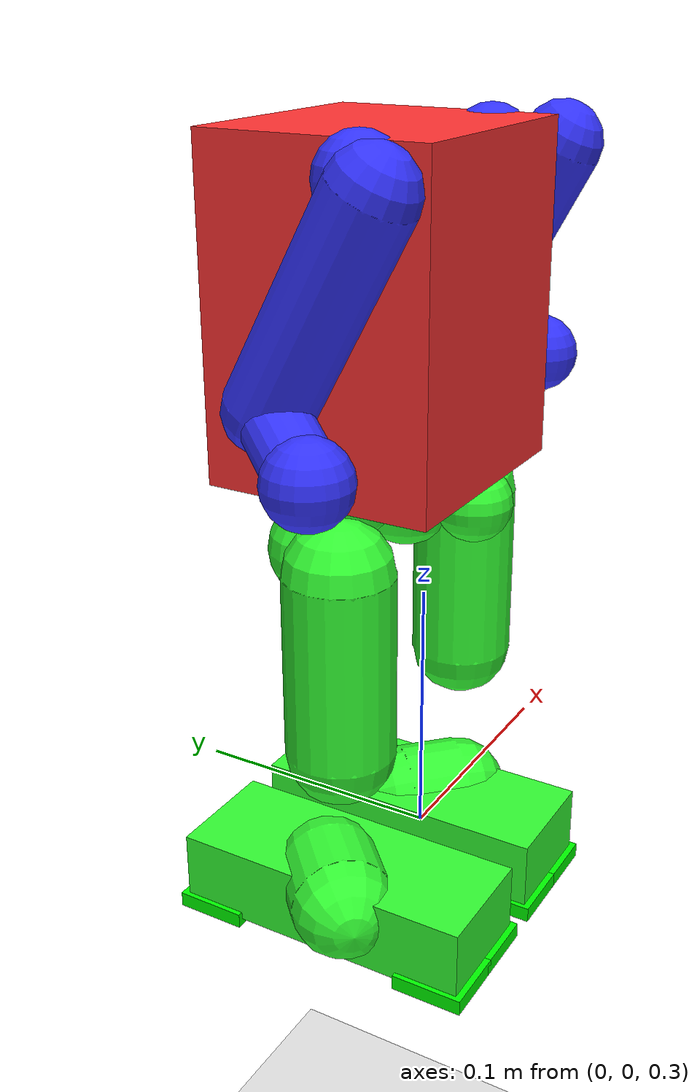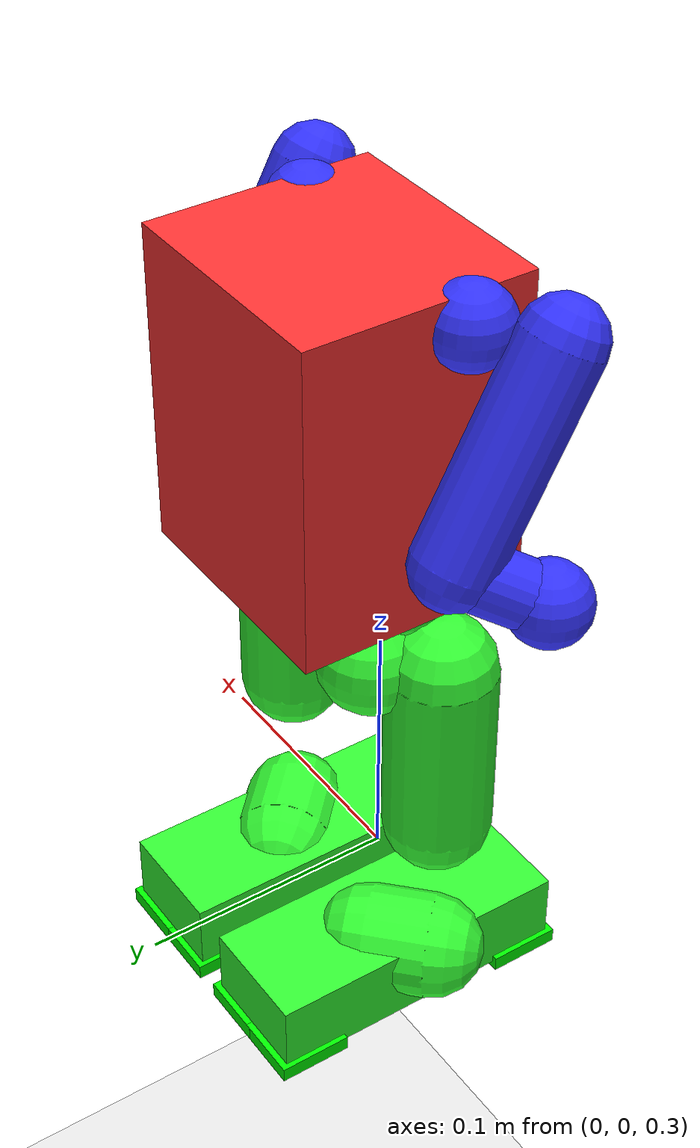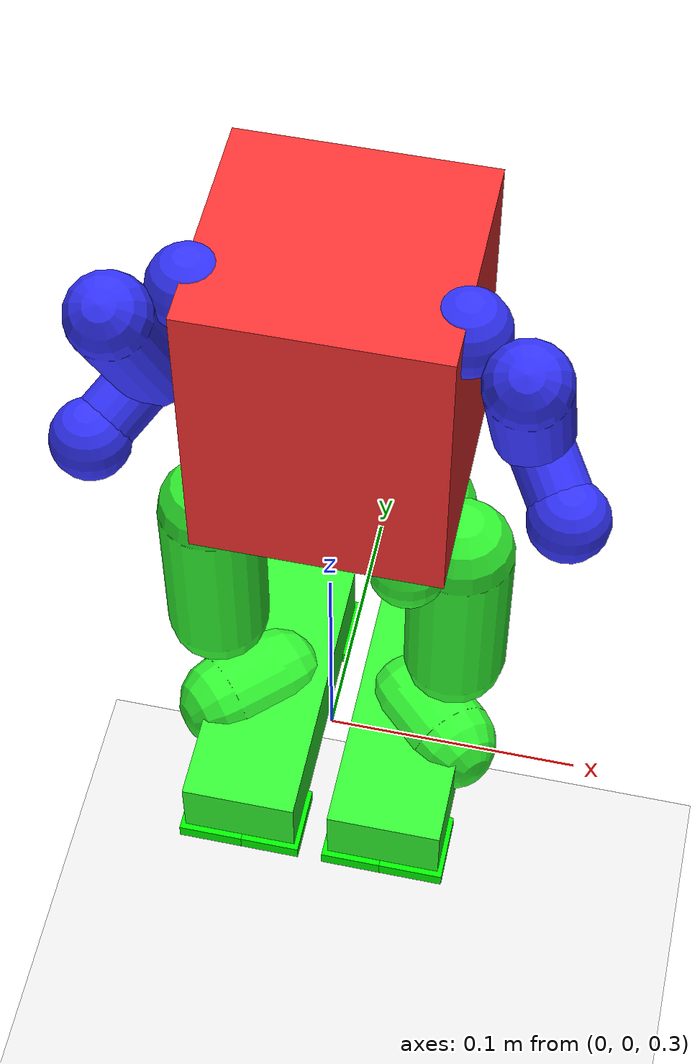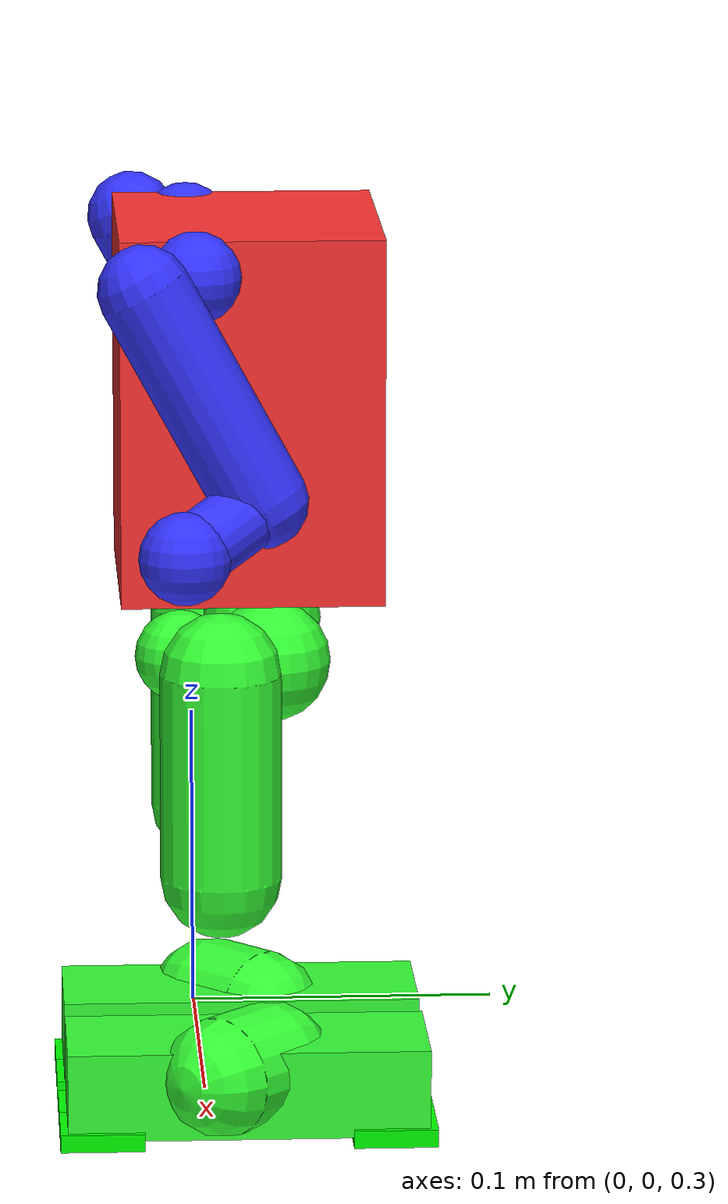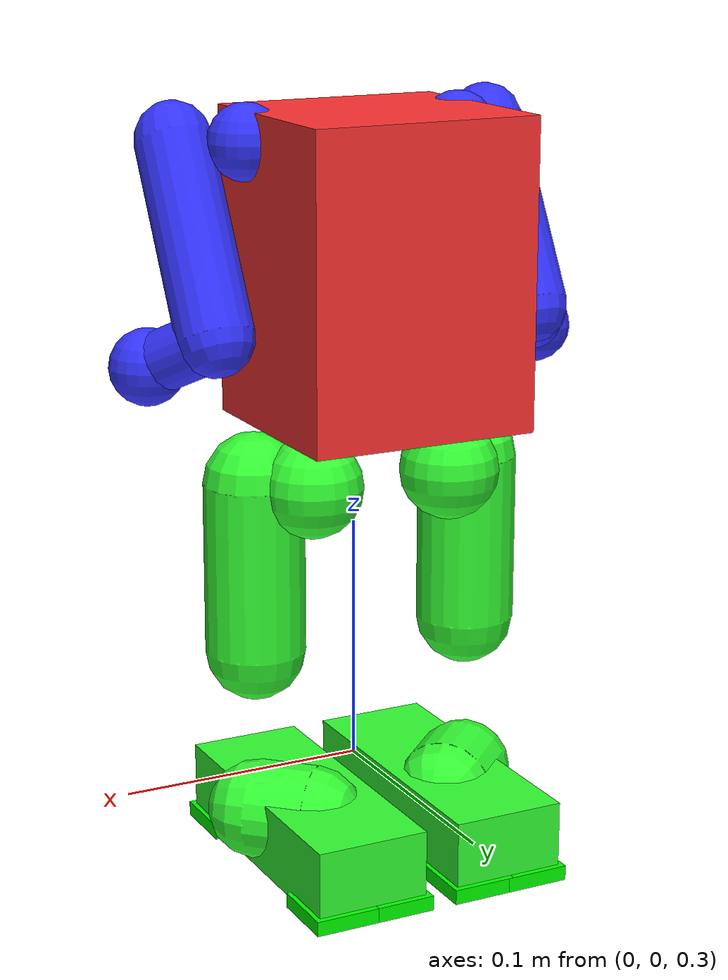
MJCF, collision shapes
<mujoco model="senpuu_maru_humanoid">
    <compiler angle="radian" meshdir="../all/meshes"  inertiafromgeom="true"/>
    <option timestep="0.002" integrator="Euler" solver="Newton" gravity="0 0 -9.81"/>

    <default>
        <!-- 全関節の粘性抵抗・クーロン摩擦・電機子的慣性を設定し、実機モータの応答を近似 -->
        <joint limited="true" damping="0.5" frictionloss="0.05" armature="0.01" />
        <!-- 衝突用geomのデフォルト：床面や足裏に適切な摩擦を設定 -->
        <geom contype="1" conaffinity="1" condim="3" friction="1.5 0.005 0.0001" />
    </default>

    <asset>
        <!-- 実際に meshes フォルダに存在する 21個のSTLファイルのみを定義 -->
        <mesh name="doutai-v5_doutai" file="doutai-v5_doutai.stl" scale="0.001 0.001 0.001" />
        <mesh name="doutai-v5_hidarikata_hidarikata-1" file="doutai-v5_hidarikata_hidarikata-1.stl" scale="0.001 0.001 0.001" />
        <mesh name="doutai-v5_hidarikata_hidarijouwan_hidarijouwan-1" file="doutai-v5_hidarikata_hidarijouwan_hidarijouwan-1.stl" scale="0.001 0.001 0.001" />
        <mesh name="doutai-v5_hidarikata_hidarijouwan_hidarihiji_hidarihiji-1" file="doutai-v5_hidarikata_hidarijouwan_hidarihiji_hidarihiji-1.stl" scale="0.001 0.001 0.001" />
        <mesh name="doutai-v5_hidarikata_hidarijouwan_hidarihiji_hidarite_hidarite-1" file="doutai-v5_hidarikata_hidarijouwan_hidarihiji_hidarite_hidarite-1.stl" scale="0.001 0.001 0.001" />
        <mesh name="doutai-v5_hidaridairou_hidaridairou-1" file="doutai-v5_hidaridairou_hidaridairou-1.stl" scale="0.001 0.001 0.001" />
        <mesh name="doutai-v5_hidaridairou_hidarikokansetu_hidarikokansetu-1" file="doutai-v5_hidaridairou_hidarikokansetu_hidarikokansetu-1.stl" scale="0.001 0.001 0.001" />
        <mesh name="doutai-v5_hidaridairou_hidarikokansetu_hidarimomo_hidarimomo-1" file="doutai-v5_hidaridairou_hidarikokansetu_hidarimomo_hidarimomo-1.stl" scale="0.001 0.001 0.001" />
        <mesh name="doutai-v5_hidaridairou_hidarikokansetu_hidarimomo_hidarihizabu_hidarihizabu-1" file="doutai-v5_hidaridairou_hidarikokansetu_hidarimomo_hidarihizabu_hidarihizabu-1.stl" scale="0.001 0.001 0.001" />
        <mesh name="doutai-v5_hidaridairou_hidarikokansetu_hidarimomo_hidarihizabu_hidariaikabu_hidarihizabu-2" file="doutai-v5_hidaridairou_hidarikokansetu_hidarimomo_hidarihizabu_hidariaikabu_hidarihizabu-2.stl" scale="0.001 0.001 0.001" />
        <mesh name="doutai-v5_hidaridairou_hidarikokansetu_hidarimomo_hidarihizabu_hidariaikabu_hidariashiura_hidariashiura-1" file="doutai-v5_hidaridairou_hidarikokansetu_hidarimomo_hidarihizabu_hidariaikabu_hidariashiura_hidariashiura-1.stl" scale="0.001 0.001 0.001" />
        <mesh name="doutai-v5_migikata_migikata-1" file="doutai-v5_migikata_migikata-1.stl" scale="0.001 0.001 0.001" />
        <mesh name="doutai-v5_migikata_migijouwan_migijouwan-1" file="doutai-v5_migikata_migijouwan_migijouwan-1.stl" scale="0.001 0.001 0.001" />
        <mesh name="doutai-v5_migikata_migijouwan_migihiji_migihiji-1" file="doutai-v5_migikata_migijouwan_migihiji_migihiji-1.stl" scale="0.001 0.001 0.001" />
        <mesh name="doutai-v5_migikata_migijouwan_migihiji_migite_migite-1" file="doutai-v5_migikata_migijouwan_migihiji_migite_migite-1.stl" scale="0.001 0.001 0.001" />
        <mesh name="doutai-v5_migidaitou_migidaitou-1" file="doutai-v5_migidaitou_migidaitou-1.stl" scale="0.001 0.001 0.001" />
        <mesh name="doutai-v5_migidaitou_migikokansetu_migikokansetu-1" file="doutai-v5_migidaitou_migikokansetu_migikokansetu-1.stl" scale="0.001 0.001 0.001" />
        <mesh name="doutai-v5_migidaitou_migikokansetu_migimomo_migimomo-1" file="doutai-v5_migidaitou_migikokansetu_migimomo_migimomo-1.stl" scale="0.001 0.001 0.001" />
        <mesh name="doutai-v5_migidaitou_migikokansetu_migimomo_migihizabu_migihizabu-1" file="doutai-v5_migidaitou_migikokansetu_migimomo_migihizabu_migihizabu-1.stl" scale="0.001 0.001 0.001" />
        <mesh name="doutai-v5_migidaitou_migikokansetu_migimomo_migihizabu_migigaikabu_migigaikabu-1" file="doutai-v5_migidaitou_migikokansetu_migimomo_migihizabu_migigaikabu_migigaikabu-1.stl" scale="0.001 0.001 0.001" />
        <mesh name="doutai-v5_migidaitou_migikokansetu_migimomo_migihizabu_migigaikabu_migiashiura_migiashiura-1" file="doutai-v5_migidaitou_migikokansetu_migimomo_migihizabu_migigaikabu_migiashiura_migiashiura-1.stl" scale="0.001 0.001 0.001" />
    </asset>

    <worldbody>
        <!-- 光源と床面 -->
        <light directional="true" pos="-0.5 0.5 3" dir="0 0 -1" />
        <geom pos="0 0 0" size="10 10 0.1" type="plane" friction="1.5 0.005 0.0001" rgba="0.9 0.9 0.9 1" />

        <!-- 胴体 (torso): 美しい元のメッシュのみを表示・衝突判定に使用 -->
        <body name="doutai-v5_doutai" pos="0.00023393134703528052 -7.6423536853851e-05 0.45" euler="0 0 0">
            <!-- 致命的な問題の修正: ルートリンクへの freejoint の追加 -->
            <freejoint name="root"/>

            <!-- 美しいメッシュ本来の見た目（ダサい衝突カプセルを排除、直接衝突判定に使用） -->
            <geom name="doutai-v5_doutai_geom" type="mesh" mesh="doutai-v5_doutai" rgba="0.2 0.6 1.0 1" contype="0" conaffinity="0" group="1" density="0"/>
            <geom name="doutai-v5_doutai_collision" type="box" pos="0.0000 0.0185 0.0565" size="0.0461 0.0430 0.0605" mass="0.6915" rgba="1.0 0.2 0.2 0.3"/>

            <!-- IMUセンサー配置 -->
            <site name="imu_bno055_site" pos="0.000 0.024 0.030" size="0.01" rgba="1 0 0 1" euler="-1.5707963 0 0"/>

            <!-- 胴体慣性データ (CAD由来) -->

            <!-- ================= LEFT ARM (左腕: 4関節) ================= -->
            <body name="doutai-v5_hidarikata_hidarikata-1" pos="0.0006999999999986792 3.10002749268046e-05 3.8962940074327436e-08" euler="1.1154986237890977e-30 4.716012444300937e-15 -5.967448757363711e-16">
                <!-- ジョイント名を完全に英語化（RobotConfigと100%同期） -->
                <joint name="left_shoulder_roll" type="hinge" axis="1.0000000000000009 5.967448757363717e-16 4.743768019916521e-15" pos="0.04490006865296557 4.232619271213933e-07 0.10524996275069255" range="-3.141593 3.141593" />
                <geom name="doutai-v5_hidarikata_hidarikata-1_geom" type="mesh" mesh="doutai-v5_hidarikata_hidarikata-1" rgba="0.8 0.8 0.8 1" contype="0" conaffinity="0" group="1" density="0"/>
            <geom name="doutai-v5_hidarikata_hidarikata-1_collision" type="sphere" pos="0.0449 0.0000 0.1052" size="0.015" mass="0.008" rgba="0.2 0.2 1.0 0.3"/>

                <body name="doutai-v5_hidarikata_hidarijouwan_hidarijouwan-1" pos="0.0012999999999975121 -1.417008871351655e-16 -3.8962938546660555e-08" euler="3.8857805861868567e-16 1.1102230246328817e-16 6.661338147756639e-16">
                    <joint name="left_shoulder_pitch" type="hinge" axis="6.938893903927919e-17 0.9999999999999885 -3.60822483003053e-16" pos="0.06590006865296809 -0.017349576738072508 0.10525000171363103" range="-3.141593 0.0" />
                    <geom name="doutai-v5_hidarikata_hidarijouwan_hidarijouwan-1_geom" type="mesh" mesh="doutai-v5_hidarikata_hidarijouwan_hidarijouwan-1" rgba="0.8 0.8 0.8 1" contype="0" conaffinity="0" group="1" density="0"/>
            <geom name="doutai-v5_hidarikata_hidarijouwan_hidarijouwan-1_collision" type="capsule" fromto="0.0659 -0.0173 0.1053 0.0659 0.0205 0.0360" size="0.015" mass="0.102" rgba="0.2 0.2 1.0 0.3"/>

                    <body name="doutai-v5_hidarikata_hidarijouwan_hidarihiji_hidarihiji-1" pos="0.13060000000000024 0.01550000000000053 0.001000000000000476" euler="1.7763568393998726e-15 -5.551115123128091e-16 3.141592653589793">
                        <joint name="left_elbow" type="hinge" axis="-4.244167658835587e-15 1.4571677198223065e-15 -0.9999999999999889" pos="0.06469993134703204 -0.005000423261926825 0.03500000171363142" range="-3.141593 0.0" />
                        <geom name="doutai-v5_hidarikata_hidarijouwan_hidarihiji_hidarihiji-1_geom" type="mesh" mesh="doutai-v5_hidarikata_hidarijouwan_hidarihiji_hidarihiji-1" rgba="0.8 0.8 0.8 1" contype="0" conaffinity="0" group="1" density="0"/>
            <geom name="doutai-v5_hidarikata_hidarijouwan_hidarihiji_hidarihiji-1_collision" type="capsule" fromto="0.0647 -0.0050 0.0350 0.0473 0.0205 0.0207" size="0.012" mass="0.047" rgba="0.2 0.2 1.0 0.3"/>

                        <body name="doutai-v5_hidarikata_hidarijouwan_hidarihiji_hidarite_hidarite-1" pos="0.12990000000000063 0.015500000000002002 -2.842170943040401e-16" euler="6.522560269662253e-16 -1.471045507410035e-15 -3.141592653589768">
                            <joint name="left_wrist_pitch" type="hinge" axis="1.0000000000000009 -2.5326962746783682e-14 5.7707243174770036e-15" pos="0.08255006865296874 -0.004999576738073327 0.020700001713632003" range="-0.261799 1.570796" />
                            <geom name="doutai-v5_hidarikata_hidarijouwan_hidarihiji_hidarite_hidarite-1_geom" type="mesh" mesh="doutai-v5_hidarikata_hidarijouwan_hidarihiji_hidarite_hidarite-1" rgba="0.8 0.8 0.8 1" contype="0" conaffinity="0" group="1" density="0"/>
            <geom name="doutai-v5_hidarikata_hidarijouwan_hidarihiji_hidarite_hidarite-1_collision" type="sphere" pos="0.0826 -0.0050 0.0207" size="0.015" mass="0.016" rgba="0.2 0.2 1.0 0.3"/>
                        </body>
                    </body>
                </body >
            </body >

            <!-- ================= RIGHT ARM (右腕: 4関節) ================= -->
            <body name="doutai-v5_migikata_migikata-1" pos="-0.0006999999999999429 -8.586881206085195e-18 7.105427357601002e-17" euler="-7.42022288973515e-30 -6.327029270402596e-16 5.892230339558182e-30">
                <joint name="right_shoulder_roll" type="hinge" axis="-1.0 5.83857757690546e-30 6.049473514246301e-16" pos="-0.04490006865296557 4.232619271213933e-07 0.10524996275069255" range="-3.141593 3.141593" />
                <geom name="doutai-v5_migikata_migikata-1_geom" type="mesh" mesh="doutai-v5_migikata_migikata-1" rgba="0.8 0.8 0.8 1" contype="0" conaffinity="0" group="1" density="0"/>
            <geom name="doutai-v5_migikata_migikata-1_collision" type="sphere" pos="-0.0449 0.0000 0.1052" size="0.015" mass="0.008" rgba="0.2 0.2 1.0 0.3"/>

                <body name="doutai-v5_migikata_migijouwan_migijouwan-1" pos="-0.0012999999999993301 1.0744009848462355e-16 -4.263256414560601e-16" euler="-1.8041124150158752e-16 1.7473592938244845e-16 -6.661338147755254e-16">
                    <joint name="right_shoulder_pitch" type="hinge" axis="-6.66133814775512e-16 0.9999999999999991 2.0816681711722375e-16" pos="-0.06589993134703594 -0.017349576463146284 0.10525000171363373" range="0.0 3.141593" />
                    <geom name="doutai-v5_migikata_migijouwan_migijouwan-1_geom" type="mesh" mesh="doutai-v5_migikata_migijouwan_migijouwan-1" rgba="0.8 0.8 0.8 1" contype="0" conaffinity="0" group="1" density="0"/>
            <geom name="doutai-v5_migikata_migijouwan_migijouwan-1_collision" type="capsule" fromto="-0.0659 -0.0173 0.1053 -0.0659 0.0205 0.0360" size="0.015" mass="0.102" rgba="0.2 0.2 1.0 0.3"/>

                    <body name="doutai-v5_migikata_migijouwan_migihiji_migihiji-1" pos="-0.13130000000000216 0.015500000000000016 0.0010000000000012577" euler="9.298117831235686e-16 1.3182634835638936e-14 3.141592653589793">
                        <joint name="right_elbow" type="hinge" axis="-1.269691226236544e-14 7.771561172376098e-16 -0.9999999999999987" pos="-0.06540006865296563 -0.005000423536853729 0.0350000017136333" range="0.0 3.141593" />
                        <geom name="doutai-v5_migikata_migijouwan_migihiji_migihiji-1_geom" type="mesh" mesh="doutai-v5_migikata_migijouwan_migihiji_migihiji-1" rgba="0.8 0.8 0.8 1" contype="0" conaffinity="0" group="1" density="0"/>
            <geom name="doutai-v5_migikata_migijouwan_migihiji_migihiji-1_collision" type="capsule" fromto="-0.0654 -0.0050 0.0350 -0.0481 0.0205 0.0207" size="0.012" mass="0.047" rgba="0.2 0.2 1.0 0.3"/>

                        <body name="doutai-v5_migikata_migijouwan_migihiji_migite_migite-1" pos="-0.1306000000000015 0.0154999999999998 -1.1013412404281553e-15" euler="-5.551115123125789e-17 1.1657341758537046e-15 -3.141592653589793">
                            <joint name="right_wrist_pitch" type="hinge" axis="-1.0 -6.66133814775564e-16 -1.1586689237743048e-14" pos="-0.08254993134703542 -0.0049995764631464955 0.020700001713634317" range="-1.570796 0.261799" />
                            <geom name="doutai-v5_migikata_migijouwan_migihiji_migite_migite-1_geom" type="mesh" mesh="doutai-v5_migikata_migijouwan_migihiji_migite_migite-1" rgba="0.8 0.8 0.8 1" contype="0" conaffinity="0" group="1" density="0"/>
            <geom name="doutai-v5_migikata_migijouwan_migihiji_migite_migite-1_collision" type="sphere" pos="-0.0825 -0.0050 0.0207" size="0.015" mass="0.016" rgba="0.2 0.2 1.0 0.3"/>
                        </body>
                    </body>
                </body >
            </body >

            <!-- ================= LEFT LEG (左脚: 6関節) ================= -->
            <body name="doutai-v5_hidaridairou_hidaridairou-1" pos="0.02997599999999953 -0.004774999999999421 -0.023599999999997383" euler="-3.1415926535897927 1.848892746611747e-32 -1.4165564612606945e-31">
                <joint name="left_hip_yaw" type="hinge" axis="-2.775557561563049e-17 6.800116025829044e-16 0.9999999999999998" pos="6.865296518776542e-08 -4.235368532721702e-07 -1.7136308205764937e-09" range="-3.141593 0.0" />
                <geom name="doutai-v5_hidaridairou_hidaridairou-1_geom" type="mesh" mesh="doutai-v5_hidaridairou_hidaridairou-1" rgba="0.8 0.8 0.8 1" contype="0" conaffinity="0" group="1" density="0"/>
            <geom name="doutai-v5_hidaridairou_hidaridairou-1_collision" type="sphere" pos="0.0000 0.0000 0.0000" size="0.015" mass="0.008" rgba="0.2 1.0 0.2 0.3"/>

                <body name="doutai-v5_hidaridairou_hidarikokansetu_hidarikokansetu-1" pos="0.0137499999999992 -0.014799999999997133 -0.005249999999999524" euler="-1.3877787807822755e-17 5.551115123125865e-17 3.4694469519535767e-16">
                    <joint name="left_hip_roll" type="hinge" axis="-3.4694469519535846e-16 -0.9999999999999998 5.689893001203827e-16" pos="-0.01374993134703478 -0.014475423536856139 0.007249998286368712" range="-0.523599 0.523599" />
                    <geom name="doutai-v5_hidaridairou_hidarikokansetu_hidarikokansetu-1_geom" type="mesh" mesh="doutai-v5_hidaridairou_hidarikokansetu_hidarikokansetu-1" rgba="0.8 0.8 0.8 1" contype="0" conaffinity="0" group="1" density="0"/>
            <geom name="doutai-v5_hidaridairou_hidarikokansetu_hidarikokansetu-1_collision" type="sphere" pos="-0.0137 -0.0145 0.0072" size="0.02" mass="0.095" rgba="0.2 1.0 0.2 0.3"/>

                    <body name="doutai-v5_hidaridairou_hidarikokansetu_hidarimomo_hidarimomo-1" pos="0.011199999999993855 -0.004150000000001123 0.08829182389825153" euler="3.141592653589793 1.60892472657932e-15 -3.1415926535897913">
                        <joint name="left_hip_pitch" type="hinge" axis="-0.9999999999999999 1.706967900361184e-15 1.5811691509636963e-15" pos="0.007599931347028823 0.006374576463144964 0.08104182561188267" range="-1.047198 0.523599" />
                        <geom name="doutai-v5_hidaridairou_hidarikokansetu_hidarimomo_hidarimomo-1_geom" type="mesh" mesh="doutai-v5_hidaridairou_hidarikokansetu_hidarimomo_hidarimomo-1" rgba="0.8 0.8 0.8 1" contype="0" conaffinity="0" group="1" density="0"/>
            <geom name="doutai-v5_hidaridairou_hidarikokansetu_hidarimomo_hidarimomo-1_collision" type="capsule" fromto="0.0076 0.0064 0.0810 0.0076 0.0064 0.0123" size="0.02" mass="0.064" rgba="0.2 1.0 0.2 0.3"/>

                        <body name="doutai-v5_hidaridairou_hidarikokansetu_hidarimomo_hidarihizabu_hidarihizabu-1" pos="0.0386999999999989 0.006375000000000553 -0.04425817610175027" euler="-6.949735925627438e-17 4.107825191113081e-15 -1.5707963267948992">
                            <joint name="left_knee" type="hinge" axis="7.966552938111054e-16 -1.0 -2.52665604014938e-15" pos="4.235368556485542e-07 -0.031100068652970433 0.05660000171363287" range="-0.523599 1.047198" />
                            <geom name="doutai-v5_hidaridairou_hidarikokansetu_hidarimomo_hidarihizabu_hidarihizabu-1_geom" type="mesh" mesh="doutai-v5_hidaridairou_hidarikokansetu_hidarimomo_hidarihizabu_hidarihizabu-1" rgba="0.8 0.8 0.8 1" contype="0" conaffinity="0" group="1" density="0"/>
            <geom name="doutai-v5_hidaridairou_hidarikokansetu_hidarimomo_hidarihizabu_hidarihizabu-1_collision" type="sphere" pos="0.0000 -0.0311 0.0566" size="0.015" mass="0.016" rgba="0.2 1.0 0.2 0.3"/>

                            <body name="doutai-v5_hidaridairou_hidarikokansetu_hidarimomo_hidarihizabu_hidariaikabu_hidarihizabu-2" pos="0.0022250000000001 -0.027500000000000684 -0.019350000000000374" euler="-2.3665827156630393e-30 1.1484953613139479e-15 1.5707963267949303">
                                <joint name="left_ankle_pitch" type="hinge" axis="1.0000000000000024 -3.2856980140138993e-14 2.5266560401493856e-15" pos="-0.0036000686529695245 0.0022245764631446388 0.0072500017136331914" range="-0.436332 1.570796" />
                                <geom name="doutai-v5_hidaridairou_hidarikokansetu_hidarimomo_hidarihizabu_hidariaikabu_hidarihizabu-2_geom" type="mesh" mesh="doutai-v5_hidaridairou_hidarikokansetu_hidarimomo_hidarihizabu_hidariaikabu_hidarihizabu-2" rgba="0.8 0.8 0.8 1" contype="0" conaffinity="0" group="1" density="0"/>
            <geom name="doutai-v5_hidaridairou_hidarikokansetu_hidarimomo_hidarihizabu_hidariaikabu_hidarihizabu-2_collision" type="capsule" fromto="-0.0036 0.0022 0.0073 0.0137 -0.0145 0.0073" size="0.02" mass="0.095" rgba="0.2 1.0 0.2 0.3"/>

                                <body name="doutai-v5_hidaridairou_hidarikokansetu_hidarimomo_hidarihizabu_hidariaikabu_hidariashiura_hidariashiura-1" pos="0.01375000000000219 0.014799999999996927 0.007250000000000727" euler="-6.886852199629533e-16 1.9721522630525273e-29 -3.6609604237014486e-14">
                                    <joint name="left_ankle_roll" type="hinge" axis="-3.752624096875581e-15 1.0000000000000004 8.396741372661635e-17" pos="-6.865297122576574e-08 -0.02927542353685292 1.7136325112084985e-09" range="-0.523599 0.436332" />
                                    <!-- 足裏メッシュを直接衝突可能にする（高摩擦設定） -->
                                    <geom name="doutai-v5_hidaridairou_hidarikokansetu_hidarimomo_hidarihizabu_hidariaikabu_hidariashiura_hidariashiura-1_geom" type="mesh" mesh="doutai-v5_hidaridairou_hidarikokansetu_hidarimomo_hidarihizabu_hidariaikabu_hidariashiura_hidariashiura-1" friction="1.5 0.005 0.0001" rgba="0.15 0.15 0.15 1" contype="0" conaffinity="0" group="1" density="0"/>
            <geom name="doutai-v5_hidaridairou_hidarikokansetu_hidarimomo_hidarihizabu_hidariaikabu_hidariashiura_hidariashiura-1_collision" type="box" size="0.0230 0.0600 0.0148" pos="0.0000 -0.0215 -0.0052" friction="1.5 0.005 0.0001" mass="0.016" rgba="0.2 1.0 0.2 0.3"/>

                                    <!-- FSR センサーサイト -->
                                    <site name="l_foot_fsr_fl" pos="0.012 0.027 -0.0200" type="box" size="0.013 0.014 0.003" rgba="0 1 0 1"/>
                                    <site name="l_foot_fsr_fr" pos="-0.012 0.027 -0.0200" type="box" size="0.013 0.014 0.003" rgba="0 1 0 1"/>
                                    <site name="l_foot_fsr_bl" pos="0.012 -0.070 -0.0200" type="box" size="0.013 0.014 0.003" rgba="0 1 0 1"/>
                                    <site name="l_foot_fsr_br" pos="-0.012 -0.070 -0.0200" type="box" size="0.013 0.014 0.003" rgba="0 1 0 1"/>
                                </body>
                            </body>
                        </body>
                    </body>
                </body >
            </body >

            <!-- ================= RIGHT LEG (右脚: 6関節) ================= -->
            <body name="doutai-v5_migidaitou_migidaitou-1" pos="-0.03002400000000063 -0.0047749999999994585 -0.023599999999997418" euler="-3.1415926535897927 6.162975822039159e-33 -1.1865212859299895e-30">
                <joint name="right_hip_yaw" type="hinge" axis="-2.775557561562896e-17 4.857225732735042e-16 0.9999999999999994" pos="2.40686529653511e-05 -0.01752542353685331 -0.02000000171363082" range="0.0 3.141593" />
                <geom name="doutai-v5_migidaitou_migidaitou-1_geom" type="mesh" mesh="doutai-v5_migidaitou_migidaitou-1" rgba="0.8 0.8 0.8 1" contype="0" conaffinity="0" group="1" density="0"/>
            <geom name="doutai-v5_migidaitou_migidaitou-1_collision" type="sphere" pos="0.0000 -0.0175 -0.0200" size="0.015" mass="0.008" rgba="0.2 1.0 0.2 0.3"/>

                <body name="doutai-v5_migidaitou_migikokansetu_migikokansetu-1" pos="-0.013750000000000635 -0.0147999999999973 -0.005249999999999986" euler="-1.110223024625353e-16 1.214106236941712e-30 -3.372302437298862e-15">
                    <joint name="right_hip_roll" type="hinge" axis="3.4555691641457512e-15 -1.0 3.7470027081096943e-16" pos="0.01375006865296604 -0.01447542353685597 0.0072499982863691685" range="-0.523599 0.523599" />
                    <geom name="doutai-v5_migidaitou_migikokansetu_migikokansetu-1_geom" type="mesh" mesh="doutai-v5_migidaitou_migikokansetu_migikokansetu-1" rgba="0.8 0.8 0.8 1" contype="0" conaffinity="0" group="1" density="0"/>
            <geom name="doutai-v5_migidaitou_migikokansetu_migikokansetu-1_collision" type="sphere" pos="0.0138 -0.0145 0.0072" size="0.02" mass="0.095" rgba="0.2 1.0 0.2 0.3"/>

                    <body name="doutai-v5_migidaitou_migikokansetu_migimomo_migimomo-1" pos="-0.011199999999994539 -0.004150000000000164 0.08829182389825141" euler="-3.141592653589793 -1.7259532368477378e-15 3.141592653589787">
                        <joint name="right_hip_pitch" type="hinge" axis="1.000000000000002 3.0156844789882454e-15 1.6981976612321095e-15" pos="-0.007600068652960711 0.00637457646314414 0.08104182561188226" range="-0.523599 1.047198" />
                        <geom name="doutai-v5_migidaitou_migikokansetu_migimomo_migimomo-1_geom" type="mesh" mesh="doutai-v5_migidaitou_migikokansetu_migimomo_migimomo-1" rgba="0.8 0.8 0.8 1" contype="0" conaffinity="0" group="1" density="0"/>
            <geom name="doutai-v5_migidaitou_migikokansetu_migimomo_migimomo-1_collision" type="capsule" fromto="-0.0076 0.0064 0.0810 -0.0076 0.0064 0.0123" size="0.02" mass="0.064" rgba="0.2 1.0 0.2 0.3"/>

                        <body name="doutai-v5_migidaitou_migikokansetu_migimomo_migihizabu_migihizabu-1" pos="-0.03869999999999726 0.006374999999999287 -0.04425817610174837" euler="6.123233995737252e-17 -1.1396066603971625e-15 1.570796326794903">
                            <joint name="right_knee" type="hinge" axis="-3.3083822366827893e-15 -1.0000000000000002 5.585910008349451e-16" pos="-4.235368553781126e-07 -0.031099931347036824 0.05660000171363065" range="-1.047198 0.523599" />
                            <geom name="doutai-v5_migidaitou_migikokansetu_migimomo_migihizabu_migihizabu-1_geom" type="mesh" mesh="doutai-v5_migidaitou_migikokansetu_migimomo_migihizabu_migihizabu-1" rgba="0.8 0.8 0.8 1" contype="0" conaffinity="0" group="1" density="0"/>
            <geom name="doutai-v5_migidaitou_migikokansetu_migimomo_migihizabu_migihizabu-1_collision" type="sphere" pos="0.0000 -0.0311 0.0566" size="0.015" mass="0.016" rgba="0.2 1.0 0.2 0.3"/>

                            <body name="doutai-v5_migidaitou_migikokansetu_migimomo_migihizabu_migigaikabu_migigaikabu-1" pos="-0.0022249999999994162 -0.027500000000002637 -0.019349999999999895" euler="-1.6653345369377972e-16 7.754553812075034e-17 -1.5707963267949014">
                                <joint name="right_ankle_pitch" type="hinge" axis="-0.9999999999999989 -2.0303615446334142e-15 -3.920575471411645e-16" pos="0.0035999313470341967 0.0022245764631440798 0.007250001713630512" range="-1.570796 0.436332" />
                                <geom name="doutai-v5_migidaitou_migikokansetu_migimomo_migihizabu_migigaikabu_migigaikabu-1_geom" type="mesh" mesh="doutai-v5_migidaitou_migikokansetu_migimomo_migihizabu_migigaikabu_migigaikabu-1" rgba="0.8 0.8 0.8 1" contype="0" conaffinity="0" group="1" density="0"/>
            <geom name="doutai-v5_migidaitou_migikokansetu_migimomo_migihizabu_migigaikabu_migigaikabu-1_collision" type="capsule" fromto="0.0036 0.0022 0.0073 -0.0138 -0.0145 0.0073" size="0.02" mass="0.095" rgba="0.2 1.0 0.2 0.3"/>

                                <body name="doutai-v5_migidaitou_migikokansetu_migimomo_migihizabu_migigaikabu_migiashiura_migiashiura-1" pos="-0.01374999999999984 0.014799999999998533 0.007249999999999789" euler="-9.020562075079582e-16 -9.714451465470072e-17 3.330669073875475e-15">
                                    <joint name="right_ankle_roll" type="hinge" axis="1.3003075292420552e-15 0.9999999999999998 1.3069474642901523e-15" pos="-6.865296604115251e-08 -0.029275423536854465 1.713630699048552e-09" range="-0.436332 0.436332" />
                                    <!-- 足裏メッシュを直接衝突可能にする（高摩擦設定） -->
                                    <geom name="doutai-v5_migidaitou_migikokansetu_migimomo_migihizabu_migigaikabu_migiashiura_migiashiura-1_geom" type="mesh" mesh="doutai-v5_migidaitou_migikokansetu_migimomo_migihizabu_migigaikabu_migiashiura_migiashiura-1" friction="1.5 0.005 0.0001" rgba="0.15 0.15 0.15 1" contype="0" conaffinity="0" group="1" density="0"/>
            <geom name="doutai-v5_migidaitou_migikokansetu_migimomo_migihizabu_migigaikabu_migiashiura_migiashiura-1_collision" type="box" size="0.0230 0.0600 0.0148" pos="0.0000 -0.0215 -0.0052" friction="1.5 0.005 0.0001" mass="0.016" rgba="0.2 1.0 0.2 0.3"/>

                                    <!-- FSR センサーサイト -->
                                    <site name="r_foot_fsr_fl" pos="0.012 0.027 -0.0200" type="box" size="0.013 0.014 0.003" rgba="0 1 0 1"/>
                                    <site name="r_foot_fsr_fr" pos="-0.012 0.027 -0.0200" type="box" size="0.013 0.014 0.003" rgba="0 1 0 1"/>
                                    <site name="r_foot_fsr_bl" pos="0.012 -0.070 -0.0200" type="box" size="0.013 0.014 0.003" rgba="0 1 0 1"/>
                                    <site name="r_foot_fsr_br" pos="-0.012 -0.070 -0.0200" type="box" size="0.013 0.014 0.003" rgba="0 1 0 1"/>
                                </body>
                            </body>
                        </body>
                    </body>
                </body >
            </body >
        </body >
    </worldbody>

    <!-- ACTUATORS: 行動空間の定義 (20 DoF - 脚6関節 / 腕4関節)          -->
    <!-- RobotConfig.JOINT_NAMES の定義順に完全に一致させ、IDズレを防ぐ  -->
    <actuator>
        <!-- 1. RIGHT LEG (右脚 6関節) -->
        <position name="right_hip_yaw"      joint="right_hip_yaw"      kp="20" kv="0.5" ctrlrange="0.0 3.141593" forcerange="-2.94 2.94" />
        <position name="right_hip_roll"     joint="right_hip_roll"     kp="20" kv="0.5" ctrlrange="-0.523599 0.523599" forcerange="-2.94 2.94" />
        <position name="right_hip_pitch"    joint="right_hip_pitch"    kp="20" kv="0.5" ctrlrange="-0.523599 1.047198" forcerange="-2.94 2.94" />
        <position name="right_knee"         joint="right_knee"         kp="20" kv="0.5" ctrlrange="-1.047198 0.523599" forcerange="-2.94 2.94" />
        <position name="right_ankle_pitch"  joint="right_ankle_pitch"  kp="20" kv="0.5" ctrlrange="-1.570796 0.436332" forcerange="-2.94 2.94" />
        <position name="right_ankle_roll"   joint="right_ankle_roll"   kp="20" kv="0.5" ctrlrange="-0.436332 0.436332" forcerange="-2.94 2.94" />

        <!-- 2. LEFT LEG (左脚 6関節) -->
        <position name="left_hip_yaw"       joint="left_hip_yaw"       kp="20" kv="0.5" ctrlrange="-3.141593 0.0" forcerange="-2.94 2.94" />
        <position name="left_hip_roll"      joint="left_hip_roll"      kp="20" kv="0.5" ctrlrange="-0.523599 0.523599" forcerange="-2.94 2.94" />
        <position name="left_hip_pitch"     joint="left_hip_pitch"     kp="20" kv="0.5" ctrlrange="-1.047198 0.523599" forcerange="-2.94 2.94" />
        <position name="left_knee"          joint="left_knee"          kp="20" kv="0.5" ctrlrange="-0.523599 1.047198" forcerange="-2.94 2.94" />
        <position name="left_ankle_pitch"   joint="left_ankle_pitch"   kp="20" kv="0.5" ctrlrange="-0.436332 1.570796" forcerange="-2.94 2.94" />
        <position name="left_ankle_roll"    joint="left_ankle_roll"    kp="20" kv="0.5" ctrlrange="-0.523599 0.436332" forcerange="-2.94 2.94" />

        <!-- 3. RIGHT ARM (右腕 4関節) -->
        <position name="right_shoulder_roll"  joint="right_shoulder_roll"  kp="20" kv="0.5" ctrlrange="-3.141593 3.141593" forcerange="-2.94 2.94" />
        <position name="right_shoulder_pitch" joint="right_shoulder_pitch" kp="20" kv="0.5" ctrlrange="0.0 3.141593" forcerange="-2.94 2.94" />
        <position name="right_elbow"          joint="right_elbow"          kp="20" kv="0.5" ctrlrange="0.0 3.141593" forcerange="-2.94 2.94" />
        <position name="right_wrist_pitch"    joint="right_wrist_pitch"    kp="20" kv="0.5" ctrlrange="-1.570796 0.261799" forcerange="-2.94 2.94" />

        <!-- 4. LEFT ARM (左腕 4関節) -->
        <position name="left_shoulder_roll"   joint="left_shoulder_roll"   kp="20" kv="0.5" ctrlrange="-3.141593 3.141593" forcerange="-2.94 2.94" />
        <position name="left_shoulder_pitch"  joint="left_shoulder_pitch"  kp="20" kv="0.5" ctrlrange="-3.141593 0.0" forcerange="-2.94 2.94" />
        <position name="left_elbow"           joint="left_elbow"           kp="20" kv="0.5" ctrlrange="-3.141593 0.0" forcerange="-2.94 2.94" />
        <position name="left_wrist_pitch"     joint="left_wrist_pitch"     kp="20" kv="0.5" ctrlrange="-0.261799 1.570796" forcerange="-2.94 2.94" />
    </actuator>

    <!-- CONTACT: 衝突除外 [T7 2026-10-02]                               -->
    <!-- 股関節ヨーリンクの球と太もものカプセルがデフォルト姿勢で常時食い込む     -->
    <!-- (左13.6mm/右6.4mm)。足首ピッチリンクのカプセル(r=20mm)が床に接地し、     -->
    <!-- 体重の約1/3がFSR以外で支えられる。tests/test_contact_model.py で検証。 -->
    <contact>
        <exclude body1="doutai-v5_hidaridairou_hidaridairou-1" body2="doutai-v5_hidaridairou_hidarikokansetu_hidarimomo_hidarimomo-1"/>
        <exclude body1="doutai-v5_migidaitou_migidaitou-1" body2="doutai-v5_migidaitou_migikokansetu_migimomo_migimomo-1"/>
        <exclude body1="world" body2="doutai-v5_hidaridairou_hidarikokansetu_hidarimomo_hidarihizabu_hidariaikabu_hidarihizabu-2"/>
        <exclude body1="world" body2="doutai-v5_migidaitou_migikokansetu_migimomo_migihizabu_migigaikabu_migigaikabu-1"/>
    </contact>

    <!-- SENSORS: 状態空間の定義 (IMU & 8ch FSR足圧)                     -->
    <sensor>
        <!-- BNO055 IMU データ -->
        <gyro name="torso_gyro" site="imu_bno055_site" />
        <accelerometer name="torso_accel" site="imu_bno055_site" />
        <framequat name="torso_quat" objtype="site" objname="imu_bno055_site" />

        <!-- 8チャンネル足裏FSR圧力センサー -->
        <touch name="sensor_l_foot_fl" site="l_foot_fsr_fl" />
        <touch name="sensor_l_foot_fr" site="l_foot_fsr_fr" />
        <touch name="sensor_l_foot_bl" site="l_foot_fsr_bl" />
        <touch name="sensor_l_foot_br" site="l_foot_fsr_br" />
        <touch name="sensor_r_foot_fl" site="r_foot_fsr_fl" />
        <touch name="sensor_r_foot_fr" site="r_foot_fsr_fr" />
        <touch name="sensor_r_foot_bl" site="r_foot_fsr_bl" />
        <touch name="sensor_r_foot_br" site="r_foot_fsr_br" />
    </sensor>
</mujoco>
